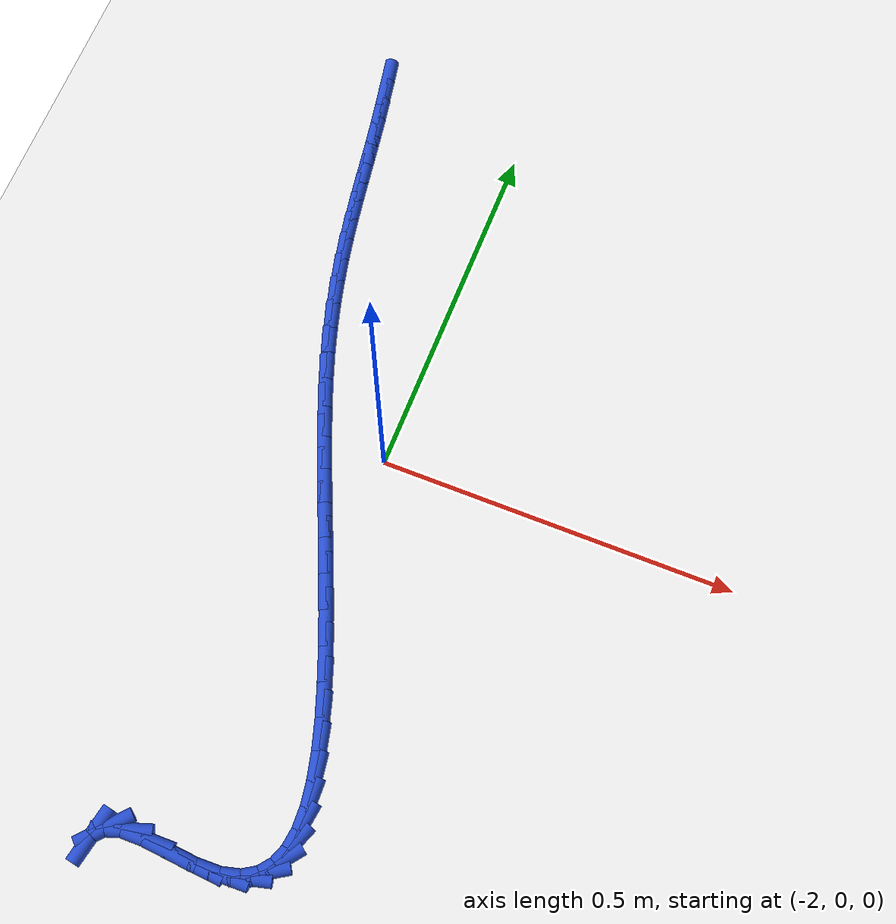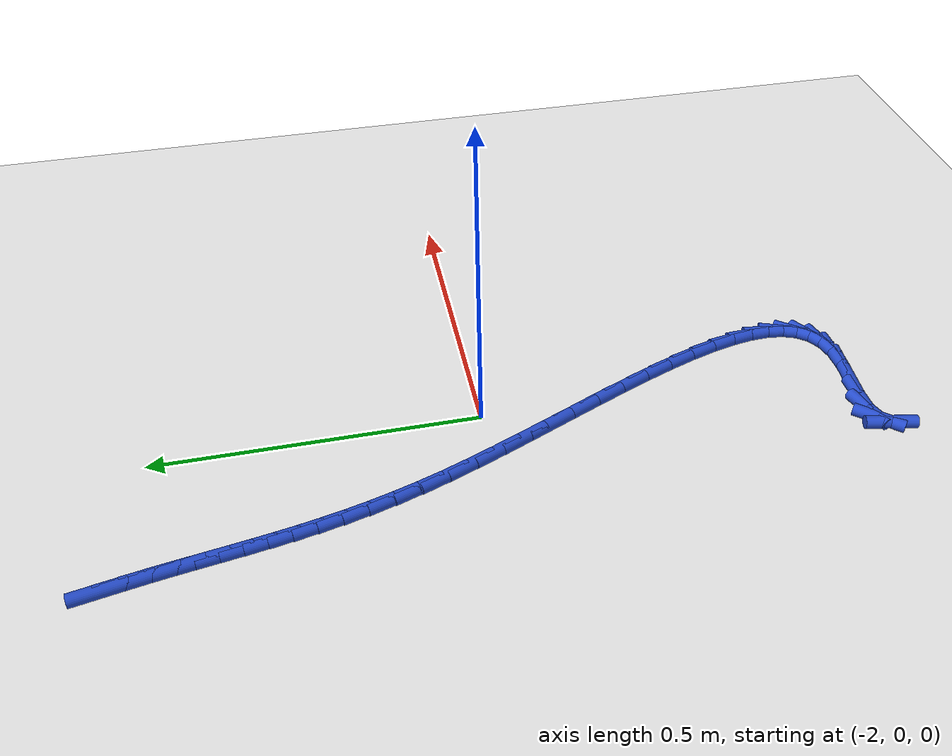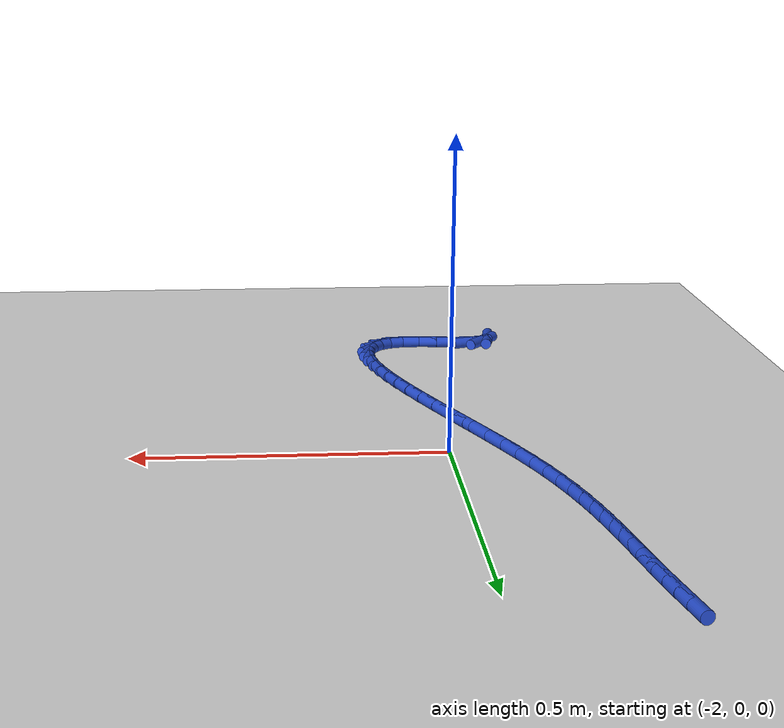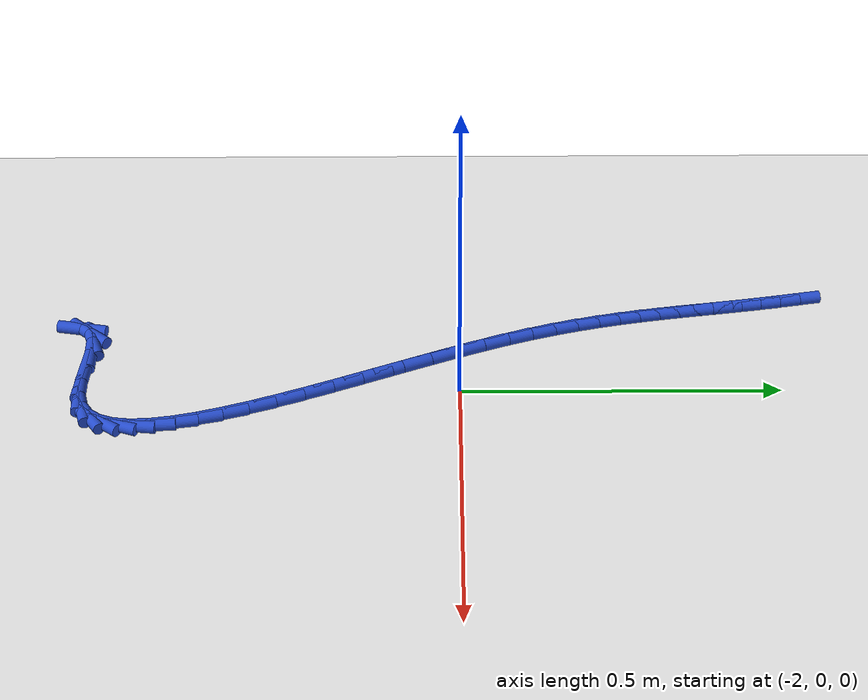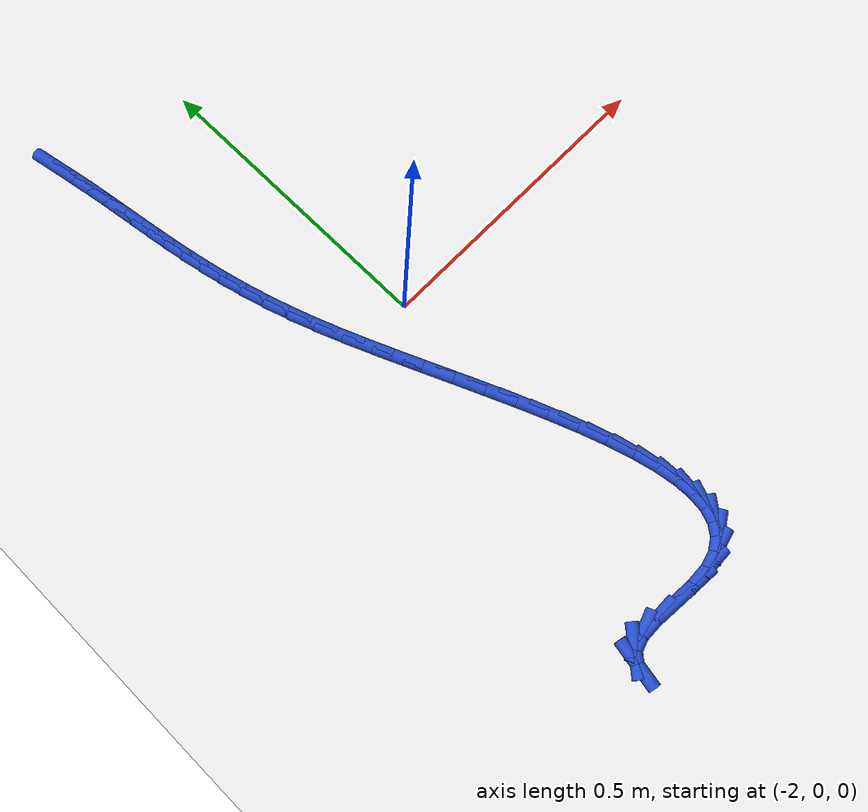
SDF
<sdf version="1.6">
 <world name="default">
  <model name="ground_plane">
   <static>1</static>
   <link name="link">
    <collision name="collision">
     <geometry><plane><normal>0 0 1</normal><size>100 100</size></plane></geometry>
     <surface><friction><ode><mu>100</mu><mu2>50</mu2></ode></friction></surface>
    </collision>
    <visual name="visual">
     <cast_shadows>0</cast_shadows>
     <geometry><plane><normal>0 0 1</normal><size>100 100</size></plane></geometry>
     <material>
      <script><uri>file://media/materials/scripts/gazebo.material</uri><name>Gazebo/WhiteGlow</name></script>
     </material>
    </visual>
   </link>
  </model>
  <model name="line">
   <link name="link_101">
    <pose>-2.2221986502054514 0.5504228228741284 0.01 0 1.57 -1.3844738712684383</pose>
    <collision name="collision">
     <geometry><cylinder><radius>0.01</radius><length>0.08</length></cylinder></geometry>
    </collision>
    <visual name="visual">
     <material>
      <script><name>Gazebo/Blue</name><uri>file://media/materials/scripts/gazebo.material</uri></script>
     </material>
     <geometry><cylinder><radius>0.01</radius><length>0.08</length></cylinder></geometry>
    </visual>
   </link>
   <link name="link_102">
    <pose>-2.2158476054098784 0.5167318772187557 0.01 0 1.57 -1.3912699672130986</pose>
    <collision name="collision">
     <geometry><cylinder><radius>0.01</radius><length>0.08</length></cylinder></geometry>
    </collision>
    <visual name="visual">
     <material>
      <script><name>Gazebo/Blue</name><uri>file://media/materials/scripts/gazebo.material</uri></script>
     </material>
     <geometry><cylinder><radius>0.01</radius><length>0.08</length></cylinder></geometry>
    </visual>
   </link>
   <link name="link_103">
    <pose>-2.209867777557822 0.4837815812709476 0.01 0 1.57 -1.405280799359426</pose>
    <collision name="collision">
     <geometry><cylinder><radius>0.01</radius><length>0.08</length></cylinder></geometry>
    </collision>
    <visual name="visual">
     <material>
      <script><name>Gazebo/Blue</name><uri>file://media/materials/scripts/gazebo.material</uri></script>
     </material>
     <geometry><cylinder><radius>0.01</radius><length>0.08</length></cylinder></geometry>
    </visual>
   </link>
   <link name="link_104">
    <pose>-2.2044751364630444 0.45149877069445266 0.01 0 1.57 -1.414240017421419</pose>
    <collision name="collision">
     <geometry><cylinder><radius>0.01</radius><length>0.08</length></cylinder></geometry>
    </collision>
    <visual name="visual">
     <material>
      <script><name>Gazebo/Blue</name><uri>file://media/materials/scripts/gazebo.material</uri></script>
     </material>
     <geometry><cylinder><radius>0.01</radius><length>0.08</length></cylinder></geometry>
    </visual>
   </link>
   <link name="link_105">
    <pose>-2.199450091064482 0.4196640668592075 0.01 0 1.57 -1.4174215936555081</pose>
    <collision name="collision">
     <geometry><cylinder><radius>0.01</radius><length>0.08</length></cylinder></geometry>
    </collision>
    <visual name="visual">
     <material>
      <script><name>Gazebo/Blue</name><uri>file://media/materials/scripts/gazebo.material</uri></script>
     </material>
     <geometry><cylinder><radius>0.01</radius><length>0.08</length></cylinder></geometry>
    </visual>
   </link>
   <link name="link_106">
    <pose>-2.194563674298153 0.38805494368613513 0.01 0 1.57 -1.414616675602108</pose>
    <collision name="collision">
     <geometry><cylinder><radius>0.01</radius><length>0.08</length></cylinder></geometry>
    </collision>
    <visual name="visual">
     <material>
      <script><name>Gazebo/Blue</name><uri>file://media/materials/scripts/gazebo.material</uri></script>
     </material>
     <geometry><cylinder><radius>0.01</radius><length>0.08</length></cylinder></geometry>
    </visual>
   </link>
   <link name="link_107">
    <pose>-2.1895869191000754 0.3564488750961589 0.01 0 1.57 -1.405898228219462</pose>
    <collision name="collision">
     <geometry><cylinder><radius>0.01</radius><length>0.08</length></cylinder></geometry>
    </collision>
    <visual name="visual">
     <material>
      <script><name>Gazebo/Blue</name><uri>file://media/materials/scripts/gazebo.material</uri></script>
     </material>
     <geometry><cylinder><radius>0.01</radius><length>0.08</length></cylinder></geometry>
    </visual>
   </link>
   <link name="link_108">
    <pose>-2.184290858406269 0.3246233350102019 0.01 0 1.57 -1.3916176447452075</pose>
    <collision name="collision">
     <geometry><cylinder><radius>0.01</radius><length>0.08</length></cylinder></geometry>
    </collision>
    <visual name="visual">
     <material>
      <script><name>Gazebo/Blue</name><uri>file://media/materials/scripts/gazebo.material</uri></script>
     </material>
     <geometry><cylinder><radius>0.01</radius><length>0.08</length></cylinder></geometry>
    </visual>
   </link>
   <link name="link_109">
    <pose>-2.178446525152751 0.2923557973491882 0.01 0 1.57 -1.3723743711013514</pose>
    <collision name="collision">
     <geometry><cylinder><radius>0.01</radius><length>0.08</length></cylinder></geometry>
    </collision>
    <visual name="visual">
     <material>
      <script><name>Gazebo/Blue</name><uri>file://media/materials/scripts/gazebo.material</uri></script>
     </material>
     <geometry><cylinder><radius>0.01</radius><length>0.08</length></cylinder></geometry>
    </visual>
   </link>
   <link name="link_110">
    <pose>-2.1718249522755415 0.25942373603404095 0.01 0 1.57 -1.3489618509766972</pose>
    <collision name="collision">
     <geometry><cylinder><radius>0.01</radius><length>0.08</length></cylinder></geometry>
    </collision>
    <visual name="visual">
     <material>
      <script><name>Gazebo/Blue</name><uri>file://media/materials/scripts/gazebo.material</uri></script>
     </material>
     <geometry><cylinder><radius>0.01</radius><length>0.08</length></cylinder></geometry>
    </visual>
   </link>
   <link name="link_111">
    <pose>-2.164197172710658 0.22560462498568337 0.01 0 1.57 -1.3222967837434316</pose>
    <collision name="collision">
     <geometry><cylinder><radius>0.01</radius><length>0.08</length></cylinder></geometry>
    </collision>
    <visual name="visual">
     <material>
      <script><name>Gazebo/Blue</name><uri>file://media/materials/scripts/gazebo.material</uri></script>
     </material>
     <geometry><cylinder><radius>0.01</radius><length>0.08</length></cylinder></geometry>
    </visual>
   </link>
   <link name="link_112">
    <pose>-2.155334219394119 0.19067593812503844 0.01 0 1.57 -1.2933416064703085</pose>
    <collision name="collision">
     <geometry><cylinder><radius>0.01</radius><length>0.08</length></cylinder></geometry>
    </collision>
    <visual name="visual">
     <material>
      <script><name>Gazebo/Blue</name><uri>file://media/materials/scripts/gazebo.material</uri></script>
     </material>
     <geometry><cylinder><radius>0.01</radius><length>0.08</length></cylinder></geometry>
    </visual>
   </link>
   <link name="link_113">
    <pose>-2.145007125261944 0.15441514937303052 0.01 0 1.57 -1.2630311545204096</pose>
    <collision name="collision">
     <geometry><cylinder><radius>0.01</radius><length>0.08</length></cylinder></geometry>
    </collision>
    <visual name="visual">
     <material>
      <script><name>Gazebo/Blue</name><uri>file://media/materials/scripts/gazebo.material</uri></script>
     </material>
     <geometry><cylinder><radius>0.01</radius><length>0.08</length></cylinder></geometry>
    </visual>
   </link>
   <link name="link_114">
    <pose>-2.1329869232501513 0.1165997326505825 0.01 0 1.57 -1.2322129721417352</pose>
    <collision name="collision">
     <geometry><cylinder><radius>0.01</radius><length>0.08</length></cylinder></geometry>
    </collision>
    <visual name="visual">
     <material>
      <script><name>Gazebo/Blue</name><uri>file://media/materials/scripts/gazebo.material</uri></script>
     </material>
     <geometry><cylinder><radius>0.01</radius><length>0.08</length></cylinder></geometry>
    </visual>
   </link>
   <link name="link_115">
    <pose>-2.1190446462947587 0.07700716187861723 0.01 0 1.57 -1.202740244183074</pose>
    <collision name="collision">
     <geometry><cylinder><radius>0.01</radius><length>0.08</length></cylinder></geometry>
    </collision>
    <visual name="visual">
     <material>
      <script><name>Gazebo/Blue</name><uri>file://media/materials/scripts/gazebo.material</uri></script>
     </material>
     <geometry><cylinder><radius>0.01</radius><length>0.08</length></cylinder></geometry>
    </visual>
   </link>
   <link name="link_116">
    <pose>-2.1030346139946317 0.035490435770303405 0.01 0 1.57 -1.1805013481877713</pose>
    <collision name="collision">
     <geometry><cylinder><radius>0.01</radius><length>0.08</length></cylinder></geometry>
    </collision>
    <visual name="visual">
     <material>
      <script><name>Gazebo/Blue</name><uri>file://media/materials/scripts/gazebo.material</uri></script>
     </material>
     <geometry><cylinder><radius>0.01</radius><length>0.08</length></cylinder></geometry>
    </visual>
   </link>
   <link name="link_117">
    <pose>-2.0852759792488715 -0.007675933633260525 0.01 0 1.57 -1.1658984616821808</pose>
    <collision name="collision">
     <geometry><cylinder><radius>0.01</radius><length>0.08</length></cylinder></geometry>
    </collision>
    <visual name="visual">
     <material>
      <script><name>Gazebo/Blue</name><uri>file://media/materials/scripts/gazebo.material</uri></script>
     </material>
     <geometry><cylinder><radius>0.01</radius><length>0.08</length></cylinder></geometry>
    </visual>
   </link>
   <link name="link_118">
    <pose>-2.0662490909983537 -0.05207126085636361 0.01 0 1.57 -1.1576782425638117</pose>
    <collision name="collision">
     <geometry><cylinder><radius>0.01</radius><length>0.08</length></cylinder></geometry>
    </collision>
    <visual name="visual">
     <material>
      <script><name>Gazebo/Blue</name><uri>file://media/materials/scripts/gazebo.material</uri></script>
     </material>
     <geometry><cylinder><radius>0.01</radius><length>0.08</length></cylinder></geometry>
    </visual>
   </link>
   <link name="link_119">
    <pose>-2.046434456686014 -0.09727471669277842 0.01 0 1.57 -1.1551517664081608</pose>
    <collision name="collision">
     <geometry><cylinder><radius>0.01</radius><length>0.08</length></cylinder></geometry>
    </collision>
    <visual name="visual">
     <material>
      <script><name>Gazebo/Blue</name><uri>file://media/materials/scripts/gazebo.material</uri></script>
     </material>
     <geometry><cylinder><radius>0.01</radius><length>0.08</length></cylinder></geometry>
    </visual>
   </link>
   <link name="link_120">
    <pose>-2.026312583754788 -0.14286547193627563 0.01 0 1.57 -1.158066864147247</pose>
    <collision name="collision">
     <geometry><cylinder><radius>0.01</radius><length>0.08</length></cylinder></geometry>
    </collision>
    <visual name="visual">
     <material>
      <script><name>Gazebo/Blue</name><uri>file://media/materials/scripts/gazebo.material</uri></script>
     </material>
     <geometry><cylinder><radius>0.01</radius><length>0.08</length></cylinder></geometry>
    </visual>
   </link>
   <link name="link_121">
    <pose>-2.006363979647611 -0.18842269738062772 0.01 0 1.57 -1.1665597905635756</pose>
    <collision name="collision">
     <geometry><cylinder><radius>0.01</radius><length>0.08</length></cylinder></geometry>
    </collision>
    <visual name="visual">
     <material>
      <script><name>Gazebo/Blue</name><uri>file://media/materials/scripts/gazebo.material</uri></script>
     </material>
     <geometry><cylinder><radius>0.01</radius><length>0.08</length></cylinder></geometry>
    </visual>
   </link>
   <link name="link_122">
    <pose>-1.9870691518074182 -0.23352556381960668 0.01 0 1.57 -1.1811727901121214</pose>
    <collision name="collision">
     <geometry><cylinder><radius>0.01</radius><length>0.08</length></cylinder></geometry>
    </collision>
    <visual name="visual">
     <material>
      <script><name>Gazebo/Blue</name><uri>file://media/materials/scripts/gazebo.material</uri></script>
     </material>
     <geometry><cylinder><radius>0.01</radius><length>0.08</length></cylinder></geometry>
    </visual>
   </link>
   <link name="link_123">
    <pose>-1.9689086076771447 -0.2777532420469842 0.01 0 1.57 -1.2029413801417708</pose>
    <collision name="collision">
     <geometry><cylinder><radius>0.01</radius><length>0.08</length></cylinder></geometry>
    </collision>
    <visual name="visual">
     <material>
      <script><name>Gazebo/Blue</name><uri>file://media/materials/scripts/gazebo.material</uri></script>
     </material>
     <geometry><cylinder><radius>0.01</radius><length>0.08</length></cylinder></geometry>
    </visual>
   </link>
   <link name="link_124">
    <pose>-1.9523628546997267 -0.32068490285653223 0.01 0 1.57 -1.2335754070501017</pose>
    <collision name="collision">
     <geometry><cylinder><radius>0.01</radius><length>0.08</length></cylinder></geometry>
    </collision>
    <visual name="visual">
     <material>
      <script><name>Gazebo/Blue</name><uri>file://media/materials/scripts/gazebo.material</uri></script>
     </material>
     <geometry><cylinder><radius>0.01</radius><length>0.08</length></cylinder></geometry>
    </visual>
   </link>
   <link name="link_125">
    <pose>-1.937912400318099 -0.361899717042024 0.01 0 1.57 -1.2757863461400933</pose>
    <collision name="collision">
     <geometry><cylinder><radius>0.01</radius><length>0.08</length></cylinder></geometry>
    </collision>
    <visual name="visual">
     <material>
      <script><name>Gazebo/Blue</name><uri>file://media/materials/scripts/gazebo.material</uri></script>
     </material>
     <geometry><cylinder><radius>0.01</radius><length>0.08</length></cylinder></geometry>
    </visual>
   </link>
   <link name="link_126">
    <pose>-1.9260377519751968 -0.40097685539722866 0.01 0 1.57 -1.3338572013116299</pose>
    <collision name="collision">
     <geometry><cylinder><radius>0.01</radius><length>0.08</length></cylinder></geometry>
    </collision>
    <visual name="visual">
     <material>
      <script><name>Gazebo/Blue</name><uri>file://media/materials/scripts/gazebo.material</uri></script>
     </material>
     <geometry><cylinder><radius>0.01</radius><length>0.08</length></cylinder></geometry>
    </visual>
   </link>
   <link name="link_127">
    <pose>-1.9172194171139565 -0.4374954887159197 0.01 0 1.57 -1.4146065398952254</pose>
    <collision name="collision">
     <geometry><cylinder><radius>0.01</radius><length>0.08</length></cylinder></geometry>
    </collision>
    <visual name="visual">
     <material>
      <script><name>Gazebo/Blue</name><uri>file://media/materials/scripts/gazebo.material</uri></script>
     </material>
     <geometry><cylinder><radius>0.01</radius><length>0.08</length></cylinder></geometry>
    </visual>
   </link>
   <link name="link_128">
    <pose>-1.9119379031773127 -0.4710347877918687 0.01 0 1.57 -1.528875915691616</pose>
    <collision name="collision">
     <geometry><cylinder><radius>0.01</radius><length>0.08</length></cylinder></geometry>
    </collision>
    <visual name="visual">
     <material>
      <script><name>Gazebo/Blue</name><uri>file://media/materials/scripts/gazebo.material</uri></script>
     </material>
     <geometry><cylinder><radius>0.01</radius><length>0.08</length></cylinder></geometry>
    </visual>
   </link>
   <link name="link_129">
    <pose>-1.9106737176082014 -0.5011739234188477 0.01 0 1.57 1.448541355232357</pose>
    <collision name="collision">
     <geometry><cylinder><radius>0.01</radius><length>0.08</length></cylinder></geometry>
    </collision>
    <visual name="visual">
     <material>
      <script><name>Gazebo/Blue</name><uri>file://media/materials/scripts/gazebo.material</uri></script>
     </material>
     <geometry><cylinder><radius>0.01</radius><length>0.08</length></cylinder></geometry>
    </visual>
   </link>
   <link name="link_130">
    <pose>-1.9139073678495577 -0.5274920663906285 0.01 0 1.57 1.2146742193360751</pose>
    <collision name="collision">
     <geometry><cylinder><radius>0.01</radius><length>0.08</length></cylinder></geometry>
    </collision>
    <visual name="visual">
     <material>
      <script><name>Gazebo/Blue</name><uri>file://media/materials/scripts/gazebo.material</uri></script>
     </material>
     <geometry><cylinder><radius>0.01</radius><length>0.08</length></cylinder></geometry>
    </visual>
   </link>
   <link name="link_131">
    <pose>-1.9221193613443164 -0.5495683875009831 0.01 0 1.57 0.9052293308791373</pose>
    <collision name="collision">
     <geometry><cylinder><radius>0.01</radius><length>0.08</length></cylinder></geometry>
    </collision>
    <visual name="visual">
     <material>
      <script><name>Gazebo/Blue</name><uri>file://media/materials/scripts/gazebo.material</uri></script>
     </material>
     <geometry><cylinder><radius>0.01</radius><length>0.08</length></cylinder></geometry>
    </visual>
   </link>
   <link name="link_132">
    <pose>-1.9357902055354144 -0.5669820575436837 0.01 0 1.57 0.5613014529163262</pose>
    <collision name="collision">
     <geometry><cylinder><radius>0.01</radius><length>0.08</length></cylinder></geometry>
    </collision>
    <visual name="visual">
     <material>
      <script><name>Gazebo/Blue</name><uri>file://media/materials/scripts/gazebo.material</uri></script>
     </material>
     <geometry><cylinder><radius>0.01</radius><length>0.08</length></cylinder></geometry>
    </visual>
   </link>
   <link name="link_133">
    <pose>-1.9554004078657856 -0.5793122473125012 0.01 0 1.57 0.256456279067238</pose>
    <collision name="collision">
     <geometry><cylinder><radius>0.01</radius><length>0.08</length></cylinder></geometry>
    </collision>
    <visual name="visual">
     <material>
      <script><name>Gazebo/Blue</name><uri>file://media/materials/scripts/gazebo.material</uri></script>
     </material>
     <geometry><cylinder><radius>0.01</radius><length>0.08</length></cylinder></geometry>
    </visual>
   </link>
   <link name="link_134">
    <pose>-1.9814304757783663 -0.5861381276012082 0.01 0 1.57 0.03140414350790813</pose>
    <collision name="collision">
     <geometry><cylinder><radius>0.01</radius><length>0.08</length></cylinder></geometry>
    </collision>
    <visual name="visual">
     <material>
      <script><name>Gazebo/Blue</name><uri>file://media/materials/scripts/gazebo.material</uri></script>
     </material>
     <geometry><cylinder><radius>0.01</radius><length>0.08</length></cylinder></geometry>
    </visual>
   </link>
   <link name="link_135">
    <pose>-2.014193580510658 -0.5871673632172288 0.01 0 1.57 -0.0775393620247117</pose>
    <collision name="collision">
     <geometry><cylinder><radius>0.01</radius><length>0.08</length></cylinder></geometry>
    </collision>
    <visual name="visual">
     <material>
      <script><name>Gazebo/Blue</name><uri>file://media/materials/scripts/gazebo.material</uri></script>
     </material>
     <geometry><cylinder><radius>0.01</radius><length>0.08</length></cylinder></geometry>
    </visual>
   </link>
   <link name="link_136">
    <pose>-2.051153285414342 -0.58429577396789 0.01 0 1.57 -0.083841381852453</pose>
    <collision name="collision">
     <geometry><cylinder><radius>0.01</radius><length>0.08</length></cylinder></geometry>
    </collision>
    <visual name="visual">
     <material>
      <script><name>Gazebo/Blue</name><uri>file://media/materials/scripts/gazebo.material</uri></script>
     </material>
     <geometry><cylinder><radius>0.01</radius><length>0.08</length></cylinder></geometry>
    </visual>
   </link>
   <link name="link_137">
    <pose>-2.0873880336149813 -0.5812506641865549 0.01 0 1.57 0.018504725372125254</pose>
    <collision name="collision">
     <geometry><cylinder><radius>0.01</radius><length>0.08</length></cylinder></geometry>
    </collision>
    <visual name="visual">
     <material>
      <script><name>Gazebo/Blue</name><uri>file://media/materials/scripts/gazebo.material</uri></script>
     </material>
     <geometry><cylinder><radius>0.01</radius><length>0.08</length></cylinder></geometry>
    </visual>
   </link>
   <link name="link_138">
    <pose>-2.117903278816029 -0.5818154048805528 0.01 0 1.57 0.3222359916566929</pose>
    <collision name="collision">
     <geometry><cylinder><radius>0.01</radius><length>0.08</length></cylinder></geometry>
    </collision>
    <visual name="visual">
     <material>
      <script><name>Gazebo/Blue</name><uri>file://media/materials/scripts/gazebo.material</uri></script>
     </material>
     <geometry><cylinder><radius>0.01</radius><length>0.08</length></cylinder></geometry>
    </visual>
   </link>
   <link name="link_139">
    <pose>-2.1389697445783775 -0.5888489246938425 0.01 0 1.57 0.8479213095352156</pose>
    <collision name="collision">
     <geometry><cylinder><radius>0.01</radius><length>0.08</length></cylinder></geometry>
    </collision>
    <visual name="visual">
     <material>
      <script><name>Gazebo/Blue</name><uri>file://media/materials/scripts/gazebo.material</uri></script>
     </material>
     <geometry><cylinder><radius>0.01</radius><length>0.08</length></cylinder></geometry>
    </visual>
   </link>
   <link name="link_140">
    <pose>-2.150837957049636 -0.6023023946190107 0.01 0 1.57 1.3808973534819562</pose>
    <collision name="collision">
     <geometry><cylinder><radius>0.01</radius><length>0.08</length></cylinder></geometry>
    </collision>
    <visual name="visual">
     <material>
      <script><name>Gazebo/Blue</name><uri>file://media/materials/scripts/gazebo.material</uri></script>
     </material>
     <geometry><cylinder><radius>0.01</radius><length>0.08</length></cylinder></geometry>
    </visual>
   </link>
  </model>
 </world>
</sdf>
